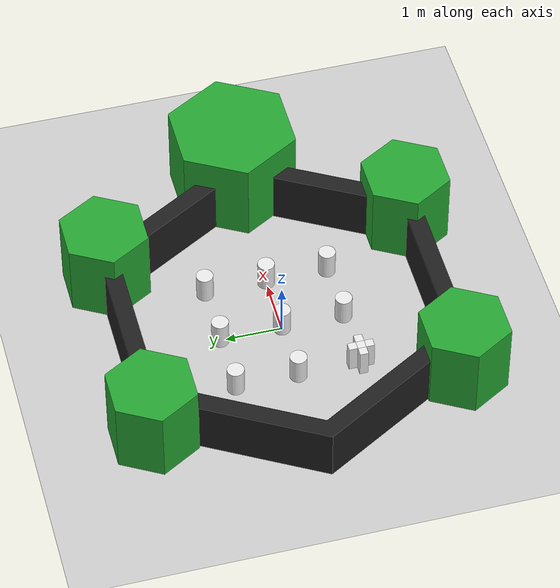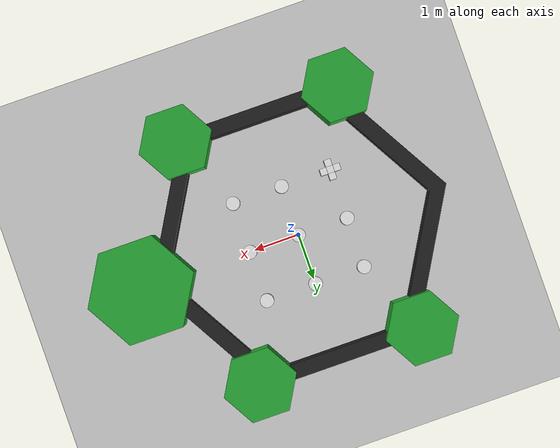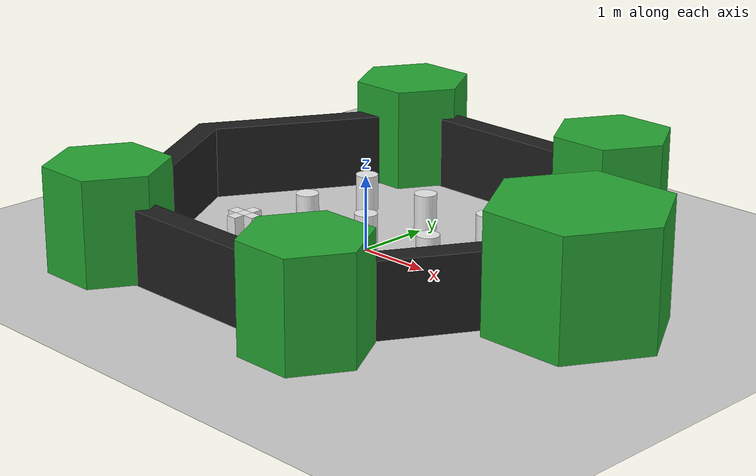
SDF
<sdf version='1.4'>
  <world name='default'>
    <!-- A global light source -->
    <include>
      <uri>model://sun</uri>
    </include>

    <!-- A ground plane -->
    <include>
      <uri>model://ground_plane</uri>
    </include>

    <physics type="ode">
      <real_time_update_rate>1000.0</real_time_update_rate>
      <max_step_size>0.001</max_step_size>
      <real_time_factor>1</real_time_factor>
      <ode>
        <solver>
          <type>quick</type>
          <iters>150</iters>
          <precon_iters>0</precon_iters>
          <sor>1.400000</sor>
          <use_dynamic_moi_rescaling>1</use_dynamic_moi_rescaling>
        </solver>
        <constraints>
          <cfm>0.00001</cfm>
          <erp>0.2</erp>
          <contact_max_correcting_vel>2000.000000</contact_max_correcting_vel>
          <contact_surface_layer>0.01000</contact_surface_layer>
        </constraints>
      </ode>
    </physics>

    <!-- Load world -->
    <include>
      <uri>model://pardo020_turtlebot3_world</uri>
    </include>

    <scene>
      <ambient>0.4 0.4 0.4 1</ambient>
      <background>0.7 0.7 0.7 1</background>
      <shadows>true</shadows>
    </scene>

    <gui fullscreen='0'>
      <camera name='user_camera'>
        <pose>0.8 0.0 12.0 0 1.5708 0</pose>
        <view_controller>orbit</view_controller>
      </camera>
    </gui>
  </world>
</sdf>

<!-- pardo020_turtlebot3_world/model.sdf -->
<sdf version='1.5'>
    <!-- Draw Circle -->
    <model name='ros_symbol'>
      <static>1</static>
      <link name='symbol'>

        <visual name='one_one1'>
          <pose>-1.1 -1.1 0.25 0 0 0</pose>
          <geometry>
            <box>
              <size>0.15 .15 0.5</size>
            </box>
          </geometry>
          <material>
            <script>
              <uri>file://media/materials/scripts/gazebo.material</uri>
              <name>Gazebo/White</name>
            </script>
          </material>
        </visual>

        <visual name='one_one2'>
          <pose>-1.25 -1.1 0.25 0 0 0</pose>
          <geometry>
            <box>
              <size>0.15 .15 0.5</size>
            </box>
          </geometry>
          <material>
            <script>
              <uri>file://media/materials/scripts/gazebo.material</uri>
              <name>Gazebo/White</name>
            </script>
          </material>
        </visual>

        <visual name='one_one3'>
          <pose>-.95 -1.1 0.25 0 0 0</pose>
          <geometry>
            <box>
              <size>0.15 .15 0.5</size>
            </box>
          </geometry>
          <material>
            <script>
              <uri>file://media/materials/scripts/gazebo.material</uri>
              <name>Gazebo/White</name>
            </script>
          </material>
        </visual>

        <visual name='one_one4'>
          <pose>-1.1 -1.25 0.25 0 0 0</pose>
          <geometry>
            <box>
              <size>0.15 .15 0.5</size>
            </box>
          </geometry>
          <material>
            <script>
              <uri>file://media/materials/scripts/gazebo.material</uri>
              <name>Gazebo/White</name>
            </script>
          </material>
        </visual>

        <visual name='one_one5'>
          <pose>-1.1 -.95 0.25 0 0 0</pose>
          <geometry>
            <box>
              <size>0.15 .15 0.5</size>
            </box>
          </geometry>
          <material>
            <script>
              <uri>file://media/materials/scripts/gazebo.material</uri>
              <name>Gazebo/White</name>
            </script>
          </material>
        </visual>

        <collision name='one_two'>
          <pose>-1.1 0 0.25 0 0 0</pose>
          <geometry>
            <cylinder>
              <radius>0.15</radius>
              <length>0.5</length>
            </cylinder>
          </geometry>
          <max_contacts>10</max_contacts>
          <surface>
            <bounce/>
            <friction>
              <ode/>
            </friction>
            <contact>
              <ode/>
            </contact>
          </surface>
        </collision>

        <visual name='one_two'>
          <pose>-1.1 0 0.25 0 0 0</pose>
          <geometry>
            <cylinder>
              <radius>0.15</radius>
              <length>0.5</length>
            </cylinder>
          </geometry>
          <material>
            <script>
              <uri>file://media/materials/scripts/gazebo.material</uri>
              <name>Gazebo/White</name>
            </script>
          </material>
        </visual>

        <collision name='one_three'>
          <pose>-1.1 1.1 0.25 0 0 0</pose>
          <geometry>
            <cylinder>
              <radius>0.15</radius>
              <length>0.5</length>
            </cylinder>
          </geometry>
          <max_contacts>10</max_contacts>
          <surface>
            <bounce/>
            <friction>
              <ode/>
            </friction>
            <contact>
              <ode/>
            </contact>
          </surface>
        </collision>

        <visual name='one_three'>
          <pose>-1.1 1.1 0.25 0 0 0</pose>
          <geometry>
            <cylinder>
              <radius>0.15</radius>
              <length>0.5</length>
            </cylinder>
          </geometry>
          <material>
            <script>
              <uri>file://media/materials/scripts/gazebo.material</uri>
              <name>Gazebo/White</name>
            </script>
          </material>
        </visual>

        <collision name='two_one'>
          <pose>0 -1.1 0.25 0 0 0</pose>
          <geometry>
            <cylinder>
              <radius>0.15</radius>
              <length>0.5</length>
            </cylinder>
          </geometry>
          <max_contacts>10</max_contacts>
          <surface>
            <bounce/>
            <friction>
              <ode/>
            </friction>
            <contact>
              <ode/>
            </contact>
          </surface>
        </collision>

        <visual name='two_one'>
          <pose>0 -1.1 0.25 0 0 0</pose>
          <geometry>
            <cylinder>
              <radius>0.15</radius>
              <length>0.5</length>
            </cylinder>
          </geometry>
          <material>
            <script>
              <uri>file://media/materials/scripts/gazebo.material</uri>
              <name>Gazebo/White</name>
            </script>
          </material>
        </visual>

        <collision name='two_two'>
          <pose>0 0 0.25 0 0 0</pose>
          <geometry>
            <cylinder>
              <radius>0.15</radius>
              <length>0.5</length>
            </cylinder>
          </geometry>
          <max_contacts>10</max_contacts>
          <surface>
            <bounce/>
            <friction>
              <ode/>
            </friction>
            <contact>
              <ode/>
            </contact>
          </surface>
        </collision>

        <visual name='two_two'>
          <pose>0 0 0.25 0 0 0</pose>
          <geometry>
            <cylinder>
              <radius>0.15</radius>
              <length>0.5</length>
            </cylinder>
          </geometry>
          <material>
            <script>
              <uri>file://media/materials/scripts/gazebo.material</uri>
              <name>Gazebo/White</name>
            </script>
          </material>
        </visual>

        <collision name='two_three'>
          <pose>0 1.1 0.25 0 0 0</pose>
          <geometry>
            <cylinder>
              <radius>0.15</radius>
              <length>0.5</length>
            </cylinder>
          </geometry>
          <max_contacts>10</max_contacts>
          <surface>
            <bounce/>
            <friction>
              <ode/>
            </friction>
            <contact>
              <ode/>
            </contact>
          </surface>
        </collision>

        <visual name='two_three'>
          <pose>0 1.1 0.25 0 0 0</pose>
          <geometry>
            <cylinder>
              <radius>0.15</radius>
              <length>0.5</length>
            </cylinder>
          </geometry>
          <material>
            <script>
              <uri>file://media/materials/scripts/gazebo.material</uri>
              <name>Gazebo/White</name>
            </script>
          </material>
        </visual>

        <collision name='three_one'>
          <pose>1.1 -1.1 0.25 0 0 0</pose>
          <geometry>
            <cylinder>
              <radius>0.15</radius>
              <length>0.5</length>
            </cylinder>
          </geometry>
          <max_contacts>10</max_contacts>
          <surface>
            <bounce/>
            <friction>
              <ode/>
            </friction>
            <contact>
              <ode/>
            </contact>
          </surface>
        </collision>

        <visual name='three_one'>
          <pose>1.1 -1.1 0.25 0 0 0</pose>
          <geometry>
            <cylinder>
              <radius>0.15</radius>
              <length>0.5</length>
            </cylinder>
          </geometry>
          <material>
            <script>
              <uri>file://media/materials/scripts/gazebo.material</uri>
              <name>Gazebo/White</name>
            </script>
          </material>
        </visual>

        <collision name='three_two'>
          <pose>1.1 0 0.25 0 0 0</pose>
          <geometry>
            <cylinder>
              <radius>0.15</radius>
              <length>0.5</length>
            </cylinder>
          </geometry>
          <max_contacts>10</max_contacts>
          <surface>
            <bounce/>
            <friction>
              <ode/>
            </friction>
            <contact>
              <ode/>
            </contact>
          </surface>
        </collision>

        <visual name='three_two'>
          <pose>1.1 0 0.25 0 0 0</pose>
          <geometry>
            <cylinder>
              <radius>0.15</radius>
              <length>0.5</length>
            </cylinder>
          </geometry>
          <material>
            <script>
              <uri>file://media/materials/scripts/gazebo.material</uri>
              <name>Gazebo/White</name>
            </script>
          </material>
        </visual>

        <collision name='three_three'>
          <pose>1.1 1.1 0.25 0 0 0</pose>
          <geometry>
            <cylinder>
              <radius>0.15</radius>
              <length>0.5</length>
            </cylinder>
          </geometry>
          <max_contacts>10</max_contacts>
          <surface>
            <bounce/>
            <friction>
              <ode/>
            </friction>
            <contact>
              <ode/>
            </contact>
          </surface>
        </collision>

        <visual name='three_three'>
          <pose>1.1 1.1 0.25 0 0 0</pose>
          <geometry>
            <cylinder>
              <radius>0.15</radius>
              <length>0.5</length>
            </cylinder>
          </geometry>
          <material>
            <script>
              <uri>file://media/materials/scripts/gazebo.material</uri>
              <name>Gazebo/White</name>
            </script>
          </material>
        </visual>

        <!-- Draw Hexagon -->
        <collision name='head'>
          <pose>3.5 0 -0.5 0 0 0</pose>
          <geometry>
            <mesh>
              <uri>model://turtlebot3_world/meshes/hexagon.dae</uri>
              <scale>0.8 0.8 0.8</scale>
            </mesh>
          </geometry>
          <max_contacts>10</max_contacts>
          <surface>
            <bounce/>
            <friction>
              <ode/>
            </friction>
            <contact>
              <ode/>
            </contact>
          </surface>
        </collision>

        <visual name='head'>
          <pose>3.5 0 -0.5 0 0 0</pose>
          <geometry>
            <mesh>
              <uri>model://turtlebot3_world/meshes/hexagon.dae</uri>
              <scale>0.8 0.8 0.8</scale>
            </mesh>
          </geometry>
          <material>
            <script>
              <uri>file://media/materials/scripts/gazebo.material</uri>
              <name>Gazebo/Green</name>
            </script>
          </material>
        </visual>

        <collision name='left_hand'>
          <pose>1.8 2.7 0 0 0 0</pose>
          <geometry>
            <mesh>
              <uri>model://turtlebot3_world/meshes/hexagon.dae</uri>
              <scale>0.55 0.55 0.55</scale>
            </mesh>
          </geometry>
          <max_contacts>10</max_contacts>
          <surface>
            <bounce/>
            <friction>
              <ode/>
            </friction>
            <contact>
              <ode/>
            </contact>
          </surface>
        </collision>

        <visual name='left_hand'>
          <pose>1.8 2.7 0 0 0 0</pose>
          <geometry>
            <mesh>
              <uri>model://turtlebot3_world/meshes/hexagon.dae</uri>
              <scale>0.55 0.55 0.55</scale>
            </mesh>
          </geometry>
          <material>
            <script>
              <uri>file://media/materials/scripts/gazebo.material</uri>
              <name>Gazebo/Green</name>
            </script>
          </material>
        </visual>

        <collision name='right_hand'>
          <pose>1.8 -2.7 0 0 0 0</pose>
          <geometry>
            <mesh>
              <uri>model://turtlebot3_world/meshes/hexagon.dae</uri>
              <scale>0.55 0.55 0.55</scale>
            </mesh>
          </geometry>
          <max_contacts>10</max_contacts>
          <surface>
            <bounce/>
            <friction>
              <ode/>
            </friction>
            <contact>
              <ode/>
            </contact>
          </surface>
        </collision>

        <visual name='right_hand'>
          <pose>1.8 -2.7 0 0 0 0</pose>
          <geometry>
            <mesh>
              <uri>model://turtlebot3_world/meshes/hexagon.dae</uri>
              <scale>0.55 0.55 0.55</scale>
            </mesh>
          </geometry>
          <material>
            <script>
              <uri>file://media/materials/scripts/gazebo.material</uri>
              <name>Gazebo/Green</name>
            </script>
          </material>
        </visual>

        <collision name='left_foot'>
          <pose>-1.8 2.7 0 0 0 0</pose>
          <geometry>
            <mesh>
              <uri>model://turtlebot3_world/meshes/hexagon.dae</uri>
              <scale>0.55 0.55 0.55</scale>
            </mesh>
          </geometry>
          <max_contacts>10</max_contacts>
          <surface>
            <bounce/>
            <friction>
              <ode/>
            </friction>
            <contact>
              <ode/>
            </contact>
          </surface>
        </collision>

        <visual name='left_foot'>
          <pose>-1.8 2.7 0 0 0 0</pose>
          <geometry>
            <mesh>
              <uri>model://turtlebot3_world/meshes/hexagon.dae</uri>
              <scale>0.55 0.55 0.55</scale>
            </mesh>
          </geometry>
          <material>
            <script>
              <uri>file://media/materials/scripts/gazebo.material</uri>
              <name>Gazebo/Green</name>
            </script>
          </material>
        </visual>

        <collision name='right_foot'>
          <pose>-1.8 -2.7 0 0 0 0</pose>
          <geometry>
            <mesh>
              <uri>model://turtlebot3_world/meshes/hexagon.dae</uri>
              <scale>0.55 0.55 0.55</scale>
            </mesh>
          </geometry>
          <max_contacts>10</max_contacts>
          <surface>
            <bounce/>
            <friction>
              <ode/>
            </friction>
            <contact>
              <ode/>
            </contact>
          </surface>
        </collision>

        <visual name='right_foot'>
          <pose>-1.8 -2.7 0 0 0 0</pose>
          <geometry>
            <mesh>
              <uri>model://turtlebot3_world/meshes/hexagon.dae</uri>
              <scale>0.55 0.55 0.55</scale>
            </mesh>
          </geometry>
          <material>
            <script>
              <uri>file://media/materials/scripts/gazebo.material</uri>
              <name>Gazebo/Green</name>
            </script>
          </material>
        </visual>

        <!-- Draw Wall -->
        <collision name='body'>
        <pose>0 0 -0.3 0 0 -1.5708</pose>
        <geometry>
          <mesh>
            <uri>model://turtlebot3_world/meshes/wall.dae</uri>
            <scale>0.25 0.25 0.25</scale>
          </mesh>
        </geometry>
        <max_contacts>10</max_contacts>
        <surface>
          <bounce/>
          <friction>
            <ode/>
          </friction>
          <contact>
            <ode/>
          </contact>
        </surface>
      </collision>

      <visual name='body'>
        <pose>0 0 -0.3 0 0 -1.5708</pose>
        <geometry>
          <mesh>
            <uri>model://turtlebot3_world/meshes/wall.dae</uri>
            <scale>0.25 0.25 0.25</scale>
          </mesh>
        </geometry>
        <material>
          <script>
            <uri>file://media/materials/scripts/gazebo.material</uri>
            <name>Gazebo/FlatBlack</name>
          </script>
        </material>
      </visual>
    </link>
  </model>
</sdf>
